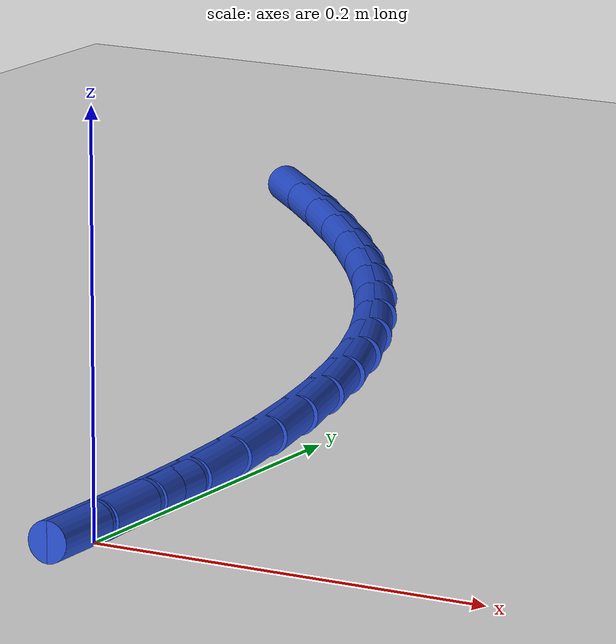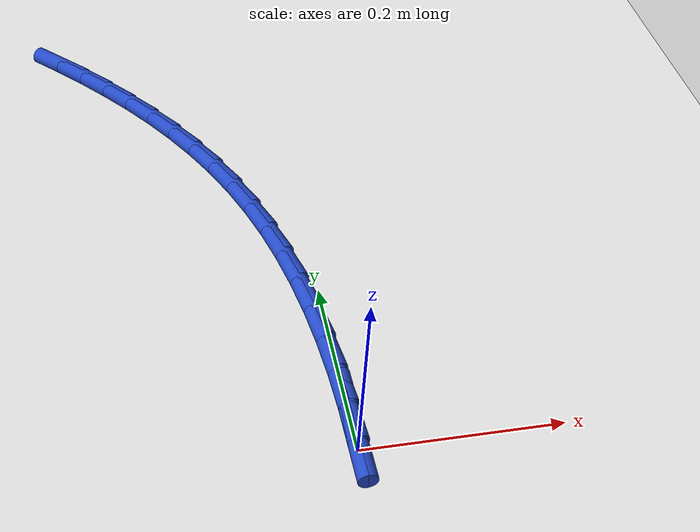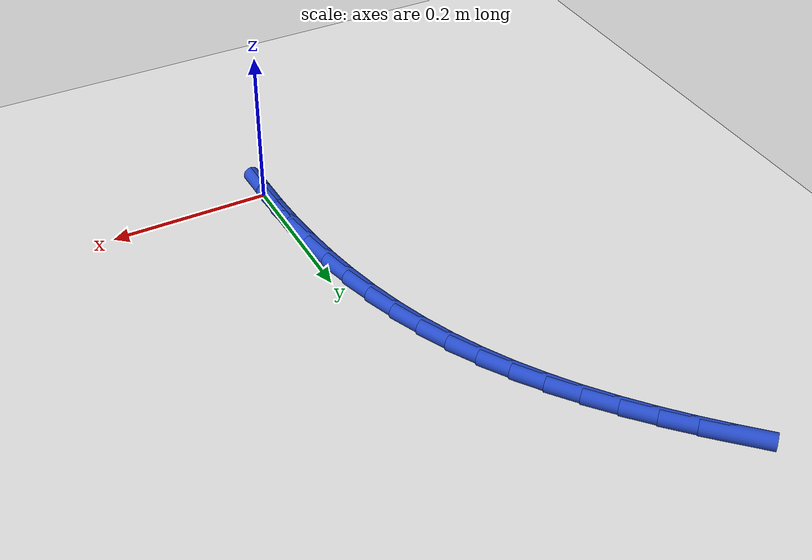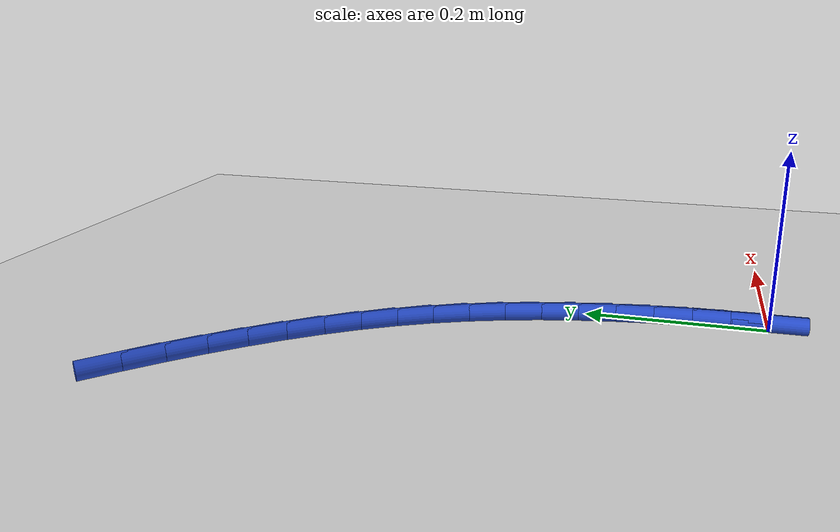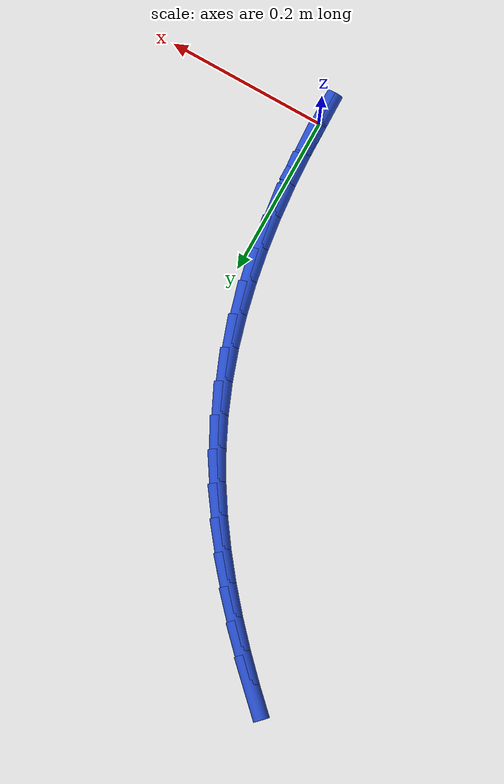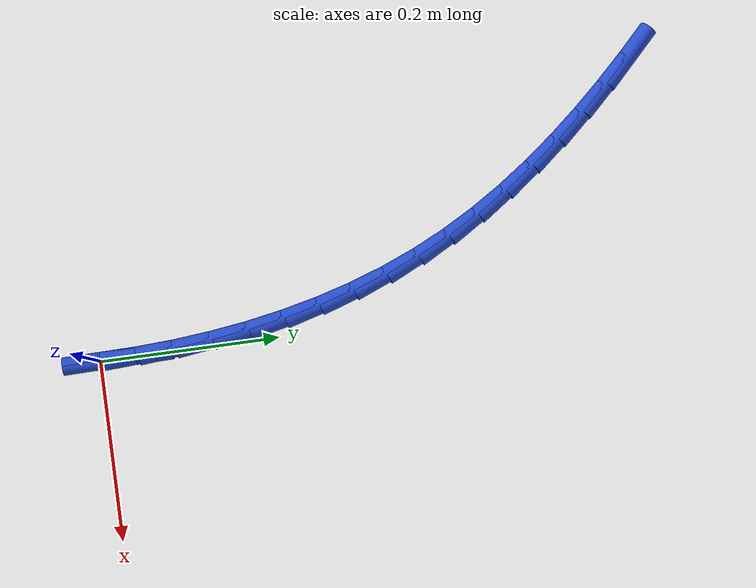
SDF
<sdf version="1.6">
 <world name="default">
  <model name="ground_plane">
   <static>1</static>
   <link name="link">
    <collision name="collision">
     <geometry><plane><normal>0 0 1</normal><size>100 100</size></plane></geometry>
     <surface><friction><ode><mu>100</mu><mu2>50</mu2></ode></friction></surface>
    </collision>
    <visual name="visual">
     <cast_shadows>0</cast_shadows>
     <geometry><plane><normal>0 0 1</normal><size>100 100</size></plane></geometry>
     <material>
      <script><uri>file://media/materials/scripts/gazebo.material</uri><name>Gazebo/WhiteGlow</name></script>
     </material>
    </visual>
   </link>
  </model>
  <model name="line">
   <link name="link_0">
    <pose>-9.540979117872439e-18 -1.8041124150158794e-16 0.01 0 1.57 -1.5562641563522297</pose>
    <collision name="collision">
     <geometry><cylinder><radius>0.01</radius><length>0.08</length></cylinder></geometry>
    </collision>
    <visual name="visual">
     <material>
      <script><name>Gazebo/Blue</name><uri>file://media/materials/scripts/gazebo.material</uri></script>
     </material>
     <geometry><cylinder><radius>0.01</radius><length>0.08</length></cylinder></geometry>
    </visual>
   </link>
   <link name="link_1">
    <pose>-0.0006135620323382339 0.04221797718795061 0.01 0 1.57 -1.5198698199850857</pose>
    <collision name="collision">
     <geometry><cylinder><radius>0.01</radius><length>0.08</length></cylinder></geometry>
    </collision>
    <visual name="visual">
     <material>
      <script><name>Gazebo/Blue</name><uri>file://media/materials/scripts/gazebo.material</uri></script>
     </material>
     <geometry><cylinder><radius>0.01</radius><length>0.08</length></cylinder></geometry>
    </visual>
   </link>
   <link name="link_2">
    <pose>-0.002757716761446359 0.08428449449831325 0.01 0 1.57 -1.481096238251609</pose>
    <collision name="collision">
     <geometry><cylinder><radius>0.01</radius><length>0.08</length></cylinder></geometry>
    </collision>
    <visual name="visual">
     <material>
      <script><name>Gazebo/Blue</name><uri>file://media/materials/scripts/gazebo.material</uri></script>
     </material>
     <geometry><cylinder><radius>0.01</radius><length>0.08</length></cylinder></geometry>
    </visual>
   </link>
   <link name="link_3">
    <pose>-0.006516698007625079 0.1260781445897635 0.01 0 1.57 -1.4397135661033738</pose>
    <collision name="collision">
     <geometry><cylinder><radius>0.01</radius><length>0.08</length></cylinder></geometry>
    </collision>
    <visual name="visual">
     <material>
      <script><name>Gazebo/Blue</name><uri>file://media/materials/scripts/gazebo.material</uri></script>
     </material>
     <geometry><cylinder><radius>0.01</radius><length>0.08</length></cylinder></geometry>
    </visual>
   </link>
   <link name="link_4">
    <pose>-0.011974739591175069 0.16747752012097702 0.01 0 1.57 -1.3954940215166036</pose>
    <collision name="collision">
     <geometry><cylinder><radius>0.01</radius><length>0.08</length></cylinder></geometry>
    </collision>
    <visual name="visual">
     <material>
      <script><name>Gazebo/Blue</name><uri>file://media/materials/scripts/gazebo.material</uri></script>
     </material>
     <geometry><cylinder><radius>0.01</radius><length>0.08</length></cylinder></geometry>
    </visual>
   </link>
   <link name="link_5">
    <pose>-0.019216075332397026 0.20836121375062963 0.01 0 1.57 -1.3482198838029444</pose>
    <collision name="collision">
     <geometry><cylinder><radius>0.01</radius><length>0.08</length></cylinder></geometry>
    </collision>
    <visual name="visual">
     <material>
      <script><name>Gazebo/Blue</name><uri>file://media/materials/scripts/gazebo.material</uri></script>
     </material>
     <geometry><cylinder><radius>0.01</radius><length>0.08</length></cylinder></geometry>
    </visual>
   </link>
   <link name="link_6">
    <pose>-0.028324939051591648 0.24860781813739713 0.01 0 1.57 -1.2976947429981673</pose>
    <collision name="collision">
     <geometry><cylinder><radius>0.01</radius><length>0.08</length></cylinder></geometry>
    </collision>
    <visual name="visual">
     <material>
      <script><name>Gazebo/Blue</name><uri>file://media/materials/scripts/gazebo.material</uri></script>
     </material>
     <geometry><cylinder><radius>0.01</radius><length>0.08</length></cylinder></geometry>
    </visual>
   </link>
   <link name="link_7">
    <pose>-0.039385564569059596 0.28809592593995503 0.01 0 1.57 -1.2437584107724207</pose>
    <collision name="collision">
     <geometry><cylinder><radius>0.01</radius><length>0.08</length></cylinder></geometry>
    </collision>
    <visual name="visual">
     <material>
      <script><name>Gazebo/Blue</name><uri>file://media/materials/scripts/gazebo.material</uri></script>
     </material>
     <geometry><cylinder><radius>0.01</radius><length>0.08</length></cylinder></geometry>
    </visual>
   </link>
   <link name="link_8">
    <pose>-0.05248218570510156 0.32670412981697927 0.01 0 1.57 -1.1863055565738456</pose>
    <collision name="collision">
     <geometry><cylinder><radius>0.01</radius><length>0.08</length></cylinder></geometry>
    </collision>
    <visual name="visual">
     <material>
      <script><name>Gazebo/Blue</name><uri>file://media/materials/scripts/gazebo.material</uri></script>
     </material>
     <geometry><cylinder><radius>0.01</radius><length>0.08</length></cylinder></geometry>
    </visual>
   </link>
   <link name="link_9">
    <pose>-0.06769903628001825 0.36431102242714564 0.01 0 1.57 -1.1254668795794538</pose>
    <collision name="collision">
     <geometry><cylinder><radius>0.01</radius><length>0.08</length></cylinder></geometry>
    </collision>
    <visual name="visual">
     <material>
      <script><name>Gazebo/Blue</name><uri>file://media/materials/scripts/gazebo.material</uri></script>
     </material>
     <geometry><cylinder><radius>0.01</radius><length>0.08</length></cylinder></geometry>
    </visual>
   </link>
   <link name="link_10">
    <pose>-0.08511510190029276 0.4007991604373144 0.01 0 1.57 -1.065020215708269</pose>
    <collision name="collision">
     <geometry><cylinder><radius>0.01</radius><length>0.08</length></cylinder></geometry>
    </collision>
    <visual name="visual">
     <material>
      <script><name>Gazebo/Blue</name><uri>file://media/materials/scripts/gazebo.material</uri></script>
     </material>
     <geometry><cylinder><radius>0.01</radius><length>0.08</length></cylinder></geometry>
    </visual>
   </link>
   <link name="link_11">
    <pose>-0.10468893227898371 0.4361420664855971 0.01 0 1.57 -1.0089278615824955</pose>
    <collision name="collision">
     <geometry><cylinder><radius>0.01</radius><length>0.08</length></cylinder></geometry>
    </collision>
    <visual name="visual">
     <material>
      <script><name>Gazebo/Blue</name><uri>file://media/materials/scripts/gazebo.material</uri></script>
     </material>
     <geometry><cylinder><radius>0.01</radius><length>0.08</length></cylinder></geometry>
    </visual>
   </link>
   <link name="link_12">
    <pose>-0.12625879272094415 0.4704041147636393 0.01 0 1.57 -0.957566097725728</pose>
    <collision name="collision">
     <geometry><cylinder><radius>0.01</radius><length>0.08</length></cylinder></geometry>
    </collision>
    <visual name="visual">
     <material>
      <script><name>Gazebo/Blue</name><uri>file://media/materials/scripts/gazebo.material</uri></script>
     </material>
     <geometry><cylinder><radius>0.01</radius><length>0.08</length></cylinder></geometry>
    </visual>
   </link>
   <link name="link_13">
    <pose>-0.1496577306142683 0.5036536205877158 0.01 0 1.57 -0.9110131696677166</pose>
    <collision name="collision">
     <geometry><cylinder><radius>0.01</radius><length>0.08</length></cylinder></geometry>
    </collision>
    <visual name="visual">
     <material>
      <script><name>Gazebo/Blue</name><uri>file://media/materials/scripts/gazebo.material</uri></script>
     </material>
     <geometry><cylinder><radius>0.01</radius><length>0.08</length></cylinder></geometry>
    </visual>
   </link>
   <link name="link_14">
    <pose>-0.17471879334705054 0.5359588992741019 0.01 0 1.57 -0.8692415227313832</pose>
    <collision name="collision">
     <geometry><cylinder><radius>0.01</radius><length>0.08</length></cylinder></geometry>
    </collision>
    <visual name="visual">
     <material>
      <script><name>Gazebo/Blue</name><uri>file://media/materials/scripts/gazebo.material</uri></script>
     </material>
     <geometry><cylinder><radius>0.01</radius><length>0.08</length></cylinder></geometry>
    </visual>
   </link>
   <link name="link_15">
    <pose>-0.201275028307385 0.5673882661390719 0.01 0 1.57 -0.8321508137089795</pose>
    <collision name="collision">
     <geometry><cylinder><radius>0.01</radius><length>0.08</length></cylinder></geometry>
    </collision>
    <visual name="visual">
     <material>
      <script><name>Gazebo/Blue</name><uri>file://media/materials/scripts/gazebo.material</uri></script>
     </material>
     <geometry><cylinder><radius>0.01</radius><length>0.08</length></cylinder></geometry>
    </visual>
   </link>
   <link name="link_16">
    <pose>-0.22915948288336613 0.5980100364989016 0.01 0 1.57 -0.7995969884965745</pose>
    <collision name="collision">
     <geometry><cylinder><radius>0.01</radius><length>0.08</length></cylinder></geometry>
    </collision>
    <visual name="visual">
     <material>
      <script><name>Gazebo/Blue</name><uri>file://media/materials/scripts/gazebo.material</uri></script>
     </material>
     <geometry><cylinder><radius>0.01</radius><length>0.08</length></cylinder></geometry>
    </visual>
   </link>
   <link name="link_17">
    <pose>-0.25820520446308803 0.6278925256698653 0.01 0 1.57 -0.7714161063536621</pose>
    <collision name="collision">
     <geometry><cylinder><radius>0.01</radius><length>0.08</length></cylinder></geometry>
    </collision>
    <visual name="visual">
     <material>
      <script><name>Gazebo/Blue</name><uri>file://media/materials/scripts/gazebo.material</uri></script>
     </material>
     <geometry><cylinder><radius>0.01</radius><length>0.08</length></cylinder></geometry>
    </visual>
   </link>
   <link name="link_160">
    <pose>3.469446951953614e-18 -1.3877787807814457e-17 0.01 0 1.57 -1.5568631464086369</pose>
    <collision name="collision">
     <geometry><cylinder><radius>0.01</radius><length>0.08</length></cylinder></geometry>
    </collision>
    <visual name="visual">
     <material>
      <script><name>Gazebo/Blue</name><uri>file://media/materials/scripts/gazebo.material</uri></script>
     </material>
     <geometry><cylinder><radius>0.01</radius><length>0.08</length></cylinder></geometry>
    </visual>
   </link>
   <link name="link_161">
    <pose>-0.0005882246780957116 0.042214813602416926 0.01 0 1.57 -1.556863146408637</pose>
    <collision name="collision">
     <geometry><cylinder><radius>0.01</radius><length>0.08</length></cylinder></geometry>
    </collision>
    <visual name="visual">
     <material>
      <script><name>Gazebo/Blue</name><uri>file://media/materials/scripts/gazebo.material</uri></script>
     </material>
     <geometry><cylinder><radius>0.01</radius><length>0.08</length></cylinder></geometry>
    </visual>
   </link>
  </model>
 </world>
</sdf>
